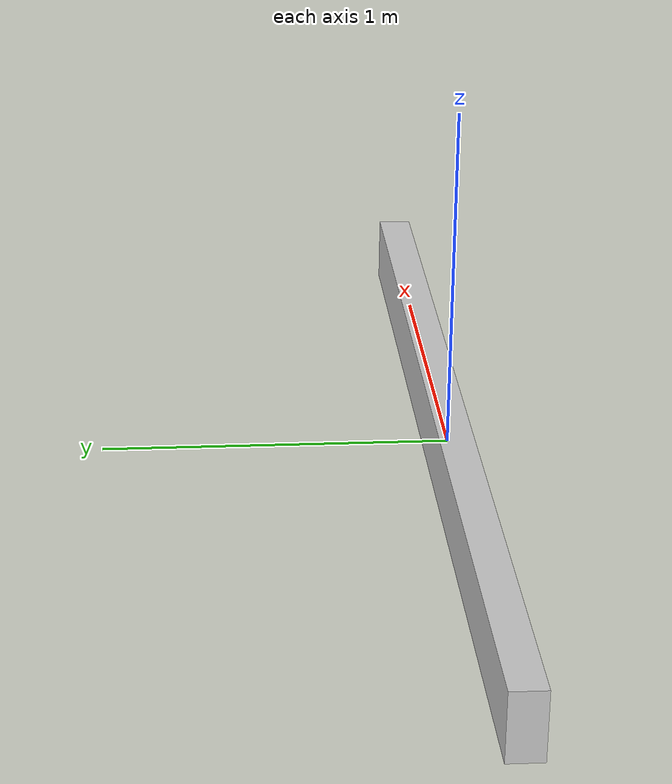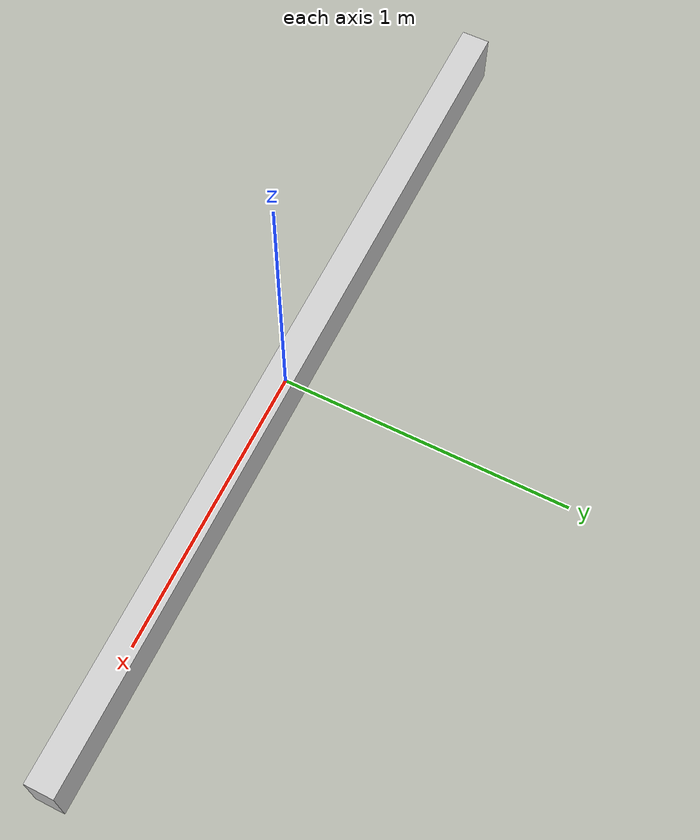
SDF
<sdf version='1.9'>
    <model name="wall{index}">
        <static>true</static>
        <link name="link">
            <collision name="collision">
                <geometry>
                    <box>
                        <size>3 0.1 0.2</size>
                    </box>
                </geometry>
            </collision>
            <visual name="visual">
                <geometry>
                    <box>
                        <size>3 0.1 0.2</size>
                    </box>
                </geometry>
                <material>
                    <ambient>0.5 0.5 0.5 1</ambient>
                    <diffuse>0.8 0.8 0.8 1</diffuse>
                    <specular>0.5 0.5 0.5 1</specular>
                </material>
            </visual>
        </link>
    </model>
</sdf>
